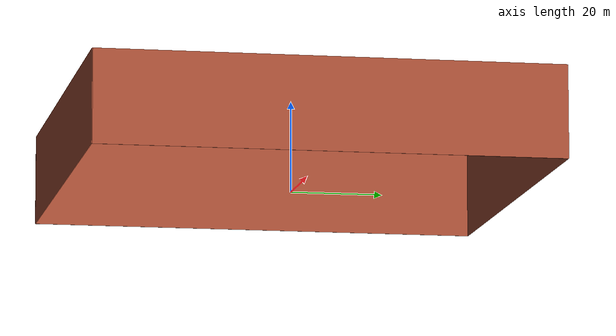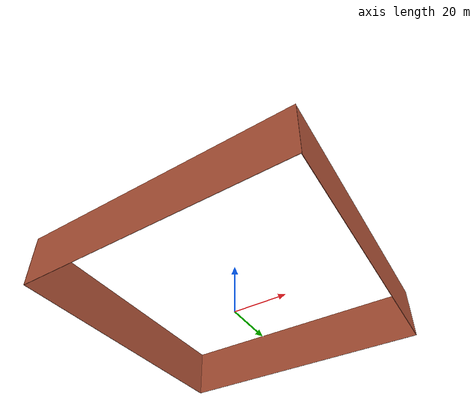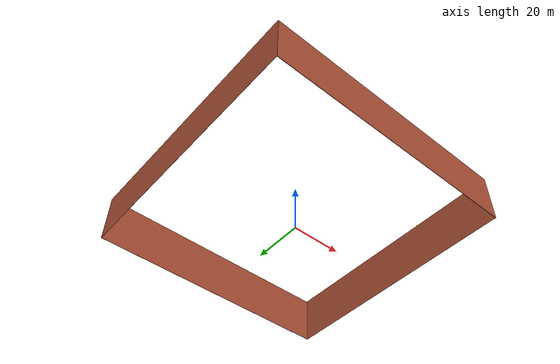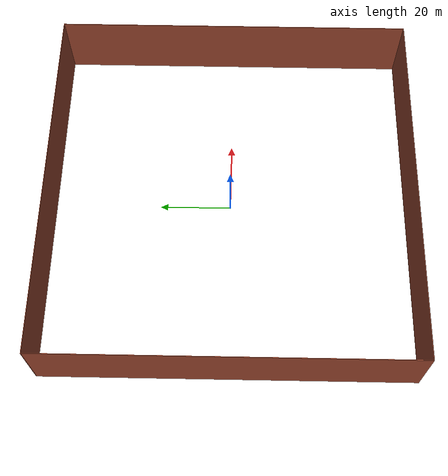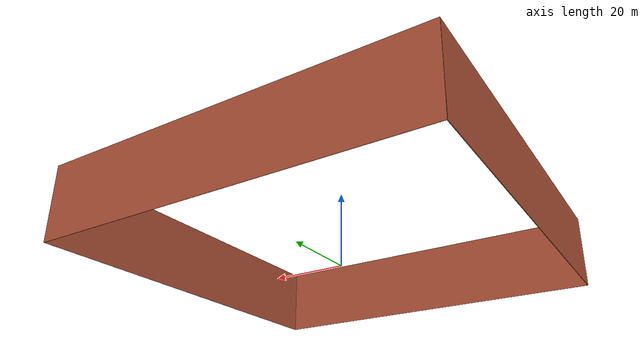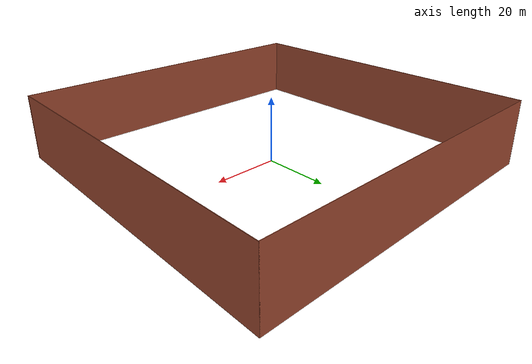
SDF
<?xml version='1.0'?>
<sdf version='1.6'>
  <model name='boundary'>
    <pose frame=''>0.041498 0 0 0 -0 0</pose>
    <link name='Wall_0'>
      <collision name='Wall_0_Collision'>
        <geometry>
          <box>
            <size>100.15 0.15 20</size>
          </box>
        </geometry>
        <pose frame=''>0 0 10 0 -0 0</pose>
      </collision>
      <visual name='Wall_0_Visual'>
        <pose frame=''>0 0 10 0 -0 0</pose>
        <geometry>
          <box>
            <size>100.15 0.15 20</size>
          </box>
        </geometry>
        <material>
          <script>
            <uri>file://media/materials/scripts/gazebo.material</uri>
            <name>Gazebo/Bricks</name>
          </script>
          <ambient>1 1 1 1</ambient>
        </material>
        <meta>
          <layer>0</layer>
        </meta>
      </visual>
      <pose frame=''>-0.041498 50 0 0 -0 0</pose>
    </link>
    <link name='Wall_2'>
      <collision name='Wall_2_Collision'>
        <geometry>
          <box>
            <size>100.15 0.15 20</size>
          </box>
        </geometry>
        <pose frame=''>0 0 10 0 -0 0</pose>
      </collision>
      <visual name='Wall_2_Visual'>
        <pose frame=''>0 0 10 0 -0 0</pose>
        <geometry>
          <box>
            <size>100.15 0.15 20</size>
          </box>
        </geometry>
        <material>
          <script>
            <uri>file://media/materials/scripts/gazebo.material</uri>
            <name>Gazebo/Bricks</name>
          </script>
          <ambient>1 1 1 1</ambient>
        </material>
        <meta>
          <layer>0</layer>
        </meta>
      </visual>
      <pose frame=''>49.9585 0 0 0 -0 -1.5708</pose>
    </link>
    <link name='Wall_4'>
      <collision name='Wall_4_Collision'>
        <geometry>
          <box>
            <size>100.233 0.15 20</size>
          </box>
        </geometry>
        <pose frame=''>0 0 10 0 -0 0</pose>
      </collision>
      <visual name='Wall_4_Visual'>
        <pose frame=''>0 0 10 0 -0 0</pose>
        <geometry>
          <box>
            <size>100.233 0.15 20</size>
          </box>
        </geometry>
        <material>
          <script>
            <uri>file://media/materials/scripts/gazebo.material</uri>
            <name>Gazebo/Bricks</name>
          </script>
          <ambient>1 1 1 1</ambient>
        </material>
        <meta>
          <layer>0</layer>
        </meta>
      </visual>
      <pose frame=''>2e-06 -50 0 0 -0 3.14159</pose>
    </link>
    <link name='Wall_6'>
      <collision name='Wall_6_Collision'>
        <geometry>
          <box>
            <size>100.15 0.15 20</size>
          </box>
        </geometry>
        <pose frame=''>0 0 10 0 -0 0</pose>
      </collision>
      <visual name='Wall_6_Visual'>
        <pose frame=''>0 0 10 0 -0 0</pose>
        <geometry>
          <box>
            <size>100.15 0.15 20</size>
          </box>
        </geometry>
        <material>
          <script>
            <uri>file://media/materials/scripts/gazebo.material</uri>
            <name>Gazebo/Bricks</name>
          </script>
          <ambient>1 1 1 1</ambient>
        </material>
        <meta>
          <layer>0</layer>
        </meta>
      </visual>
      <pose frame=''>-50.0415 0 0 0 -0 -1.5708</pose>
    </link>
    <static>1</static>
  </model>
</sdf>
